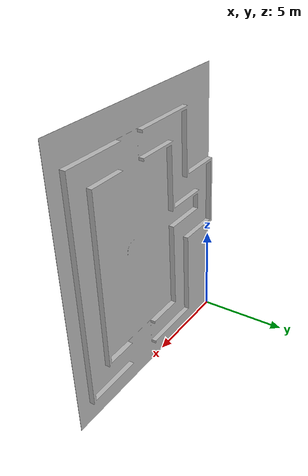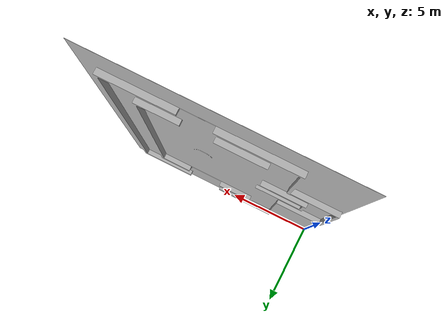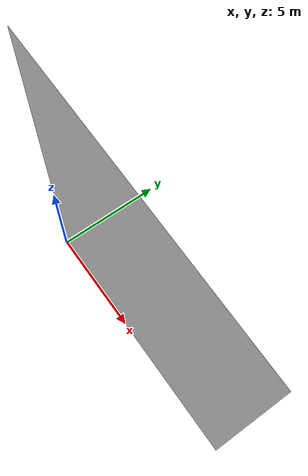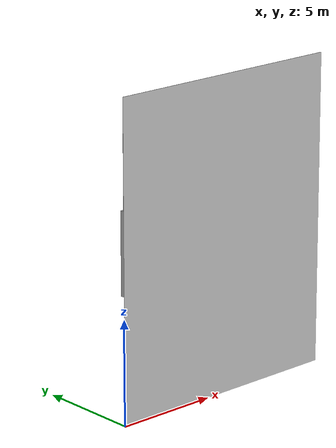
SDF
<?xml version="1.0" ?>
<sdf version="1.6">
  <model name="SHENGSAI2025_world">
    <static>true</static>
    <link name="link">
      <inertial>
        <pose>0 0 0 0 0 0</pose>
        <mass>10402000</mass>
        <inertia>
          <ixx>3970000000</ixx>
          <ixy>20876000</ixy>
          <ixz>613230000</ixz>
          <iyy>9033200000</iyy>
          <iyz>-269580000</iyz>
          <izz>5839000000</izz>
        </inertia>
      </inertial>
      <collision name="collision">
        <geometry>
          <mesh>
            <uri>model://SHENGSAI2025_world/meshes/SHENGSAI_2025.STL</uri>
          </mesh>
        </geometry>
      </collision>
      <visual name="visual">
        <geometry>
          <mesh>
            <uri>model://SHENGSAI2025_world/meshes/SHENGSAI_2025.STL</uri>
          </mesh>
        </geometry>
      </visual>
    </link>
  </model>
</sdf>
